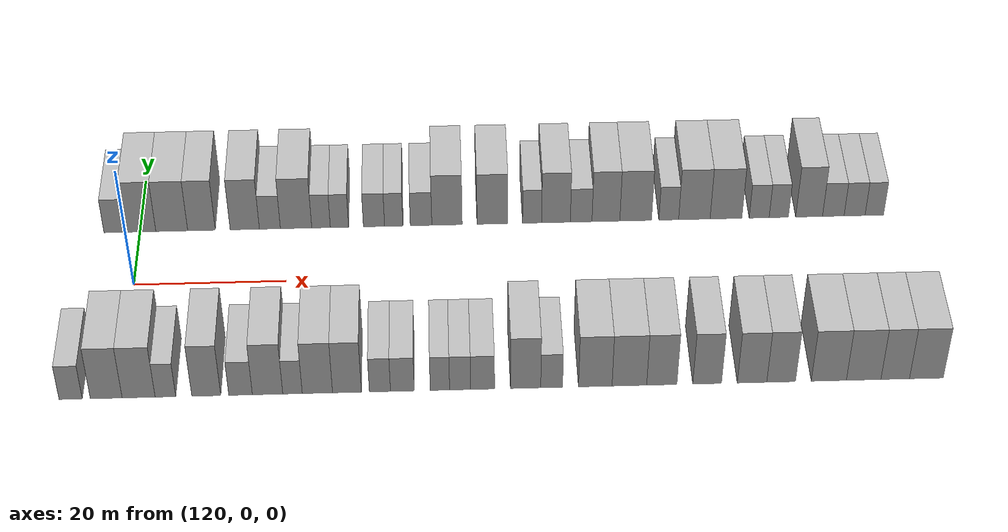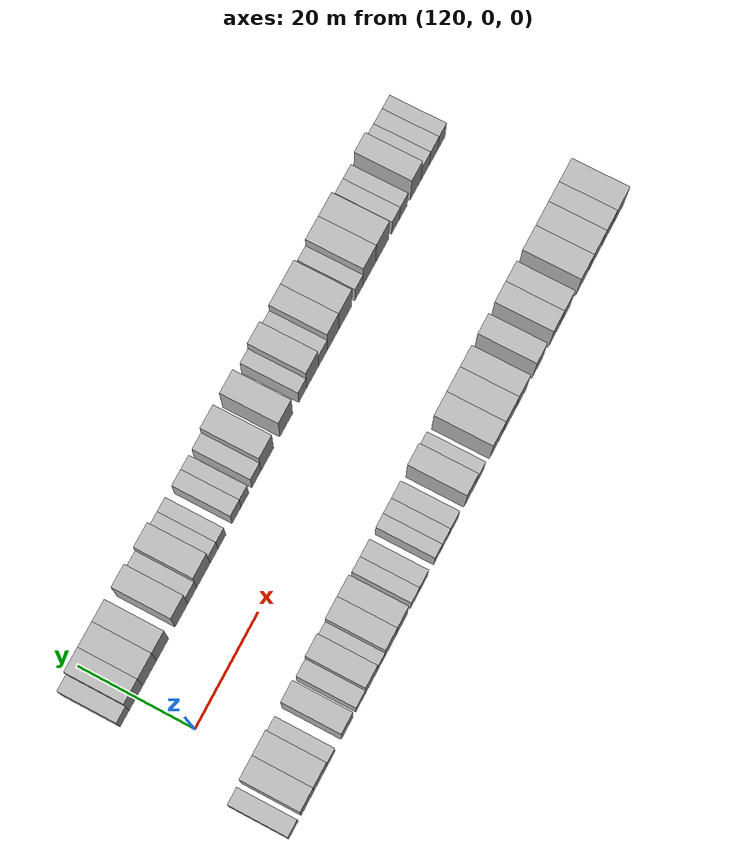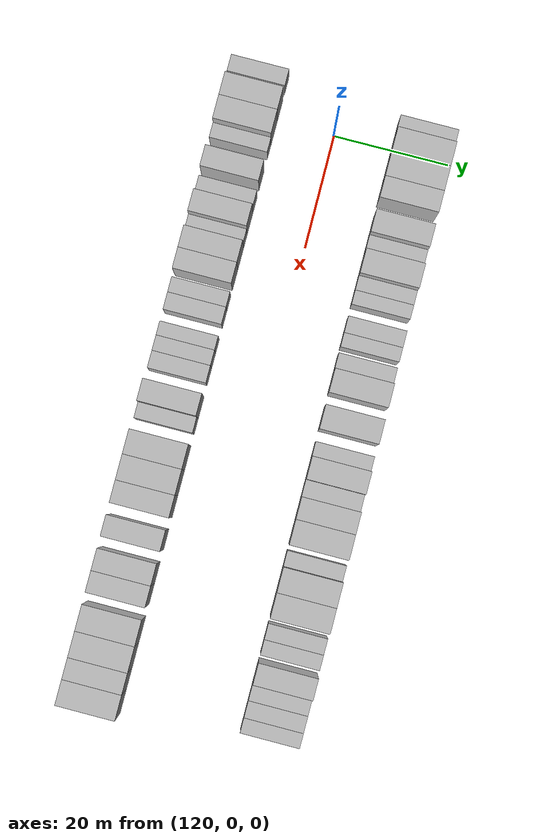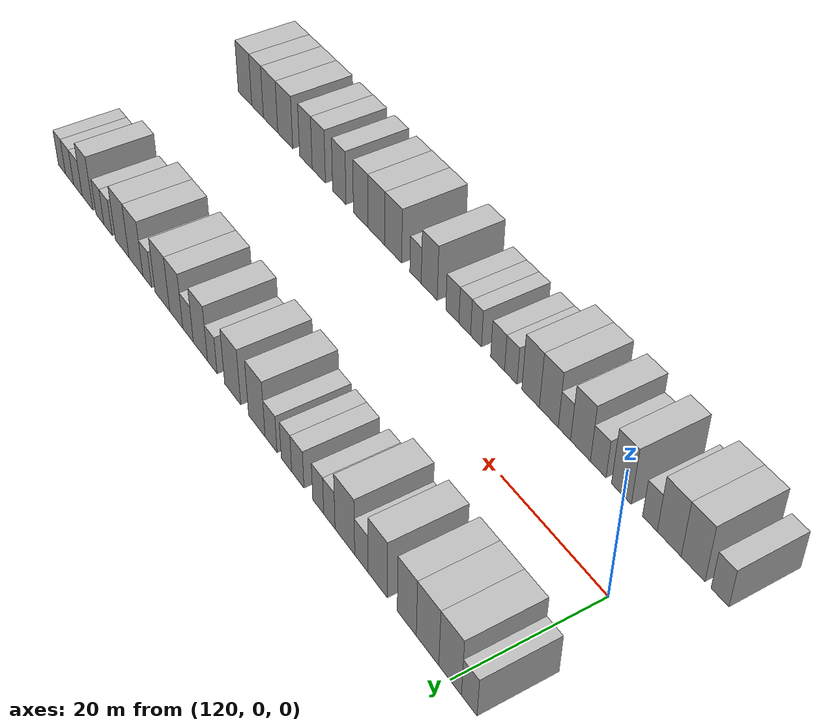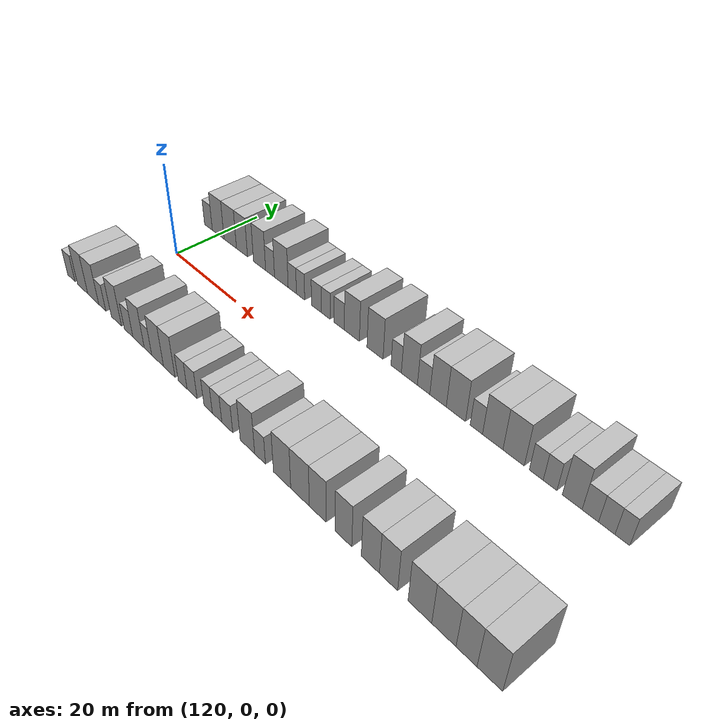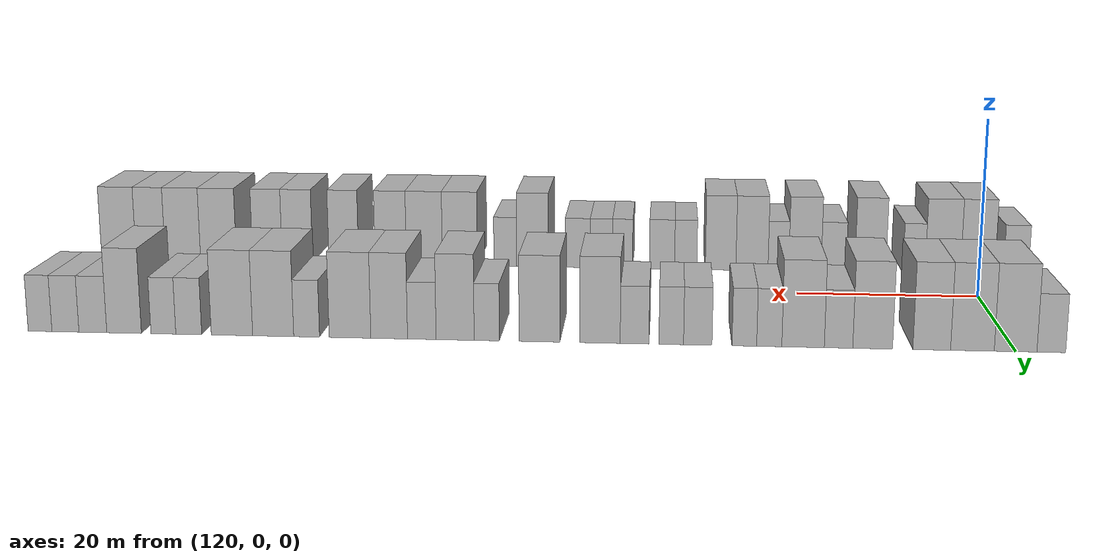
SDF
<sdf version="1.6">
 <world name="default">
  <model name="building_29">
   <static>1</static>
   <pose>116.5231 15.0000 0 0.000000 0.000000 1.570796</pose>
   <link name="link">
    <pose>0 0 3.00 0 0 0</pose>
    <collision name="collision"><geometry><box><size>10.0000 2.7981 6.0000</size></box></geometry></collision>
    <visual name="visual">
     <cast_shadows>0</cast_shadows>
     <geometry><box><size>10.0000 2.7981 6.0000</size></box></geometry>
     <material>
      <script>
       <uri>model://HANNAS_wall/materials/scripts</uri>
       <uri>model://HANNAS_wall/materials/textures</uri>
       <name>vrc/HANNAS_wall</name>
      </script>
     </material>
    </visual>
   </link>
  </model>
  <model name="building_30">
   <static>1</static>
   <pose>120.0027 15.0000 0 0.000000 0.000000 1.570796</pose>
   <link name="link">
    <pose>0 0 4.50 0 0 0</pose>
    <collision name="collision"><geometry><box><size>10.0000 4.1611 9.0000</size></box></geometry></collision>
    <visual name="visual">
     <cast_shadows>0</cast_shadows>
     <geometry><box><size>10.0000 4.1611 9.0000</size></box></geometry>
     <material>
      <script>
       <uri>model://HANNAS_wall/materials/scripts</uri>
       <uri>model://HANNAS_wall/materials/textures</uri>
       <name>vrc/HANNAS_wall</name>
      </script>
     </material>
    </visual>
   </link>
  </model>
  <model name="building_31">
   <static>1</static>
   <pose>124.2219 15.0000 0 0.000000 0.000000 1.570796</pose>
   <link name="link">
    <pose>0 0 4.50 0 0 0</pose>
    <collision name="collision"><geometry><box><size>10.0000 4.2773 9.0000</size></box></geometry></collision>
    <visual name="visual">
     <cast_shadows>0</cast_shadows>
     <geometry><box><size>10.0000 4.2773 9.0000</size></box></geometry>
     <material>
      <script>
       <uri>model://HANNAS_wall/materials/scripts</uri>
       <uri>model://HANNAS_wall/materials/textures</uri>
       <name>vrc/HANNAS_wall</name>
      </script>
     </material>
    </visual>
   </link>
  </model>
  <model name="building_32">
   <static>1</static>
   <pose>128.2122 15.0000 0 0.000000 0.000000 1.570796</pose>
   <link name="link">
    <pose>0 0 4.50 0 0 0</pose>
    <collision name="collision"><geometry><box><size>10.0000 3.7033 9.0000</size></box></geometry></collision>
    <visual name="visual">
     <cast_shadows>0</cast_shadows>
     <geometry><box><size>10.0000 3.7033 9.0000</size></box></geometry>
     <material>
      <script>
       <uri>model://HANNAS_wall/materials/scripts</uri>
       <uri>model://HANNAS_wall/materials/textures</uri>
       <name>vrc/HANNAS_wall</name>
      </script>
     </material>
    </visual>
   </link>
  </model>
  <model name="building_33">
   <static>1</static>
   <pose>134.0281 15.0000 0 0.000000 0.000000 1.570796</pose>
   <link name="link">
    <pose>0 0 4.50 0 0 0</pose>
    <collision name="collision"><geometry><box><size>10.0000 3.9285 9.0000</size></box></geometry></collision>
    <visual name="visual">
     <cast_shadows>0</cast_shadows>
     <geometry><box><size>10.0000 3.9285 9.0000</size></box></geometry>
     <material>
      <script>
       <uri>model://HANNAS_wall/materials/scripts</uri>
       <uri>model://HANNAS_wall/materials/textures</uri>
       <name>vrc/HANNAS_wall</name>
      </script>
     </material>
    </visual>
   </link>
  </model>
  <model name="building_34">
   <static>1</static>
   <pose>137.4024 15.0000 0 0.000000 0.000000 1.570796</pose>
   <link name="link">
    <pose>0 0 3.00 0 0 0</pose>
    <collision name="collision"><geometry><box><size>10.0000 2.8201 6.0000</size></box></geometry></collision>
    <visual name="visual">
     <cast_shadows>0</cast_shadows>
     <geometry><box><size>10.0000 2.8201 6.0000</size></box></geometry>
     <material>
      <script>
       <uri>model://HANNAS_wall/materials/scripts</uri>
       <uri>model://HANNAS_wall/materials/textures</uri>
       <name>vrc/HANNAS_wall</name>
      </script>
     </material>
    </visual>
   </link>
  </model>
  <model name="building_35">
   <static>1</static>
   <pose>140.9218 15.0000 0 0.000000 0.000000 1.570796</pose>
   <link name="link">
    <pose>0 0 4.50 0 0 0</pose>
    <collision name="collision"><geometry><box><size>10.0000 4.2188 9.0000</size></box></geometry></collision>
    <visual name="visual">
     <cast_shadows>0</cast_shadows>
     <geometry><box><size>10.0000 4.2188 9.0000</size></box></geometry>
     <material>
      <script>
       <uri>model://HANNAS_wall/materials/scripts</uri>
       <uri>model://HANNAS_wall/materials/textures</uri>
       <name>vrc/HANNAS_wall</name>
      </script>
     </material>
    </visual>
   </link>
  </model>
  <model name="building_36">
   <static>1</static>
   <pose>144.2823 15.0000 0 0.000000 0.000000 1.570796</pose>
   <link name="link">
    <pose>0 0 3.00 0 0 0</pose>
    <collision name="collision"><geometry><box><size>10.0000 2.5022 6.0000</size></box></geometry></collision>
    <visual name="visual">
     <cast_shadows>0</cast_shadows>
     <geometry><box><size>10.0000 2.5022 6.0000</size></box></geometry>
     <material>
      <script>
       <uri>model://HANNAS_wall/materials/scripts</uri>
       <uri>model://HANNAS_wall/materials/textures</uri>
       <name>vrc/HANNAS_wall</name>
      </script>
     </material>
    </visual>
   </link>
  </model>
  <model name="building_37">
   <static>1</static>
   <pose>146.7636 15.0000 0 0.000000 0.000000 1.570796</pose>
   <link name="link">
    <pose>0 0 3.00 0 0 0</pose>
    <collision name="collision"><geometry><box><size>10.0000 2.4604 6.0000</size></box></geometry></collision>
    <visual name="visual">
     <cast_shadows>0</cast_shadows>
     <geometry><box><size>10.0000 2.4604 6.0000</size></box></geometry>
     <material>
      <script>
       <uri>model://HANNAS_wall/materials/scripts</uri>
       <uri>model://HANNAS_wall/materials/textures</uri>
       <name>vrc/HANNAS_wall</name>
      </script>
     </material>
    </visual>
   </link>
  </model>
  <model name="building_38">
   <static>1</static>
   <pose>151.4189 15.0000 0 0.000000 0.000000 1.570796</pose>
   <link name="link">
    <pose>0 0 3.00 0 0 0</pose>
    <collision name="collision"><geometry><box><size>10.0000 2.8504 6.0000</size></box></geometry></collision>
    <visual name="visual">
     <cast_shadows>0</cast_shadows>
     <geometry><box><size>10.0000 2.8504 6.0000</size></box></geometry>
     <material>
      <script>
       <uri>model://HANNAS_wall/materials/scripts</uri>
       <uri>model://HANNAS_wall/materials/textures</uri>
       <name>vrc/HANNAS_wall</name>
      </script>
     </material>
    </visual>
   </link>
  </model>
  <model name="building_39">
   <static>1</static>
   <pose>154.0806 15.0000 0 0.000000 0.000000 1.570796</pose>
   <link name="link">
    <pose>0 0 3.00 0 0 0</pose>
    <collision name="collision"><geometry><box><size>10.0000 2.4729 6.0000</size></box></geometry></collision>
    <visual name="visual">
     <cast_shadows>0</cast_shadows>
     <geometry><box><size>10.0000 2.4729 6.0000</size></box></geometry>
     <material>
      <script>
       <uri>model://HANNAS_wall/materials/scripts</uri>
       <uri>model://HANNAS_wall/materials/textures</uri>
       <name>vrc/HANNAS_wall</name>
      </script>
     </material>
    </visual>
   </link>
  </model>
  <model name="building_40">
   <static>1</static>
   <pose>157.7672 15.0000 0 0.000000 0.000000 1.570796</pose>
   <link name="link">
    <pose>0 0 3.00 0 0 0</pose>
    <collision name="collision"><geometry><box><size>10.0000 2.9003 6.0000</size></box></geometry></collision>
    <visual name="visual">
     <cast_shadows>0</cast_shadows>
     <geometry><box><size>10.0000 2.9003 6.0000</size></box></geometry>
     <material>
      <script>
       <uri>model://HANNAS_wall/materials/scripts</uri>
       <uri>model://HANNAS_wall/materials/textures</uri>
       <name>vrc/HANNAS_wall</name>
      </script>
     </material>
    </visual>
   </link>
  </model>
  <model name="building_41">
   <static>1</static>
   <pose>161.2655 15.0000 0 0.000000 0.000000 1.570796</pose>
   <link name="link">
    <pose>0 0 4.50 0 0 0</pose>
    <collision name="collision"><geometry><box><size>10.0000 4.0963 9.0000</size></box></geometry></collision>
    <visual name="visual">
     <cast_shadows>0</cast_shadows>
     <geometry><box><size>10.0000 4.0963 9.0000</size></box></geometry>
     <material>
      <script>
       <uri>model://HANNAS_wall/materials/scripts</uri>
       <uri>model://HANNAS_wall/materials/textures</uri>
       <name>vrc/HANNAS_wall</name>
      </script>
     </material>
    </visual>
   </link>
  </model>
  <model name="building_42">
   <static>1</static>
   <pose>167.3902 15.0000 0 0.000000 0.000000 1.570796</pose>
   <link name="link">
    <pose>0 0 4.50 0 0 0</pose>
    <collision name="collision"><geometry><box><size>10.0000 4.1531 9.0000</size></box></geometry></collision>
    <visual name="visual">
     <cast_shadows>0</cast_shadows>
     <geometry><box><size>10.0000 4.1531 9.0000</size></box></geometry>
     <material>
      <script>
       <uri>model://HANNAS_wall/materials/scripts</uri>
       <uri>model://HANNAS_wall/materials/textures</uri>
       <name>vrc/HANNAS_wall</name>
      </script>
     </material>
    </visual>
   </link>
  </model>
  <model name="building_43">
   <static>1</static>
   <pose>172.7508 15.0000 0 0.000000 0.000000 1.570796</pose>
   <link name="link">
    <pose>0 0 3.00 0 0 0</pose>
    <collision name="collision"><geometry><box><size>10.0000 2.5681 6.0000</size></box></geometry></collision>
    <visual name="visual">
     <cast_shadows>0</cast_shadows>
     <geometry><box><size>10.0000 2.5681 6.0000</size></box></geometry>
     <material>
      <script>
       <uri>model://HANNAS_wall/materials/scripts</uri>
       <uri>model://HANNAS_wall/materials/textures</uri>
       <name>vrc/HANNAS_wall</name>
      </script>
     </material>
    </visual>
   </link>
  </model>
  <model name="building_44">
   <static>1</static>
   <pose>175.9808 15.0000 0 0.000000 0.000000 1.570796</pose>
   <link name="link">
    <pose>0 0 4.50 0 0 0</pose>
    <collision name="collision"><geometry><box><size>10.0000 3.8918 9.0000</size></box></geometry></collision>
    <visual name="visual">
     <cast_shadows>0</cast_shadows>
     <geometry><box><size>10.0000 3.8918 9.0000</size></box></geometry>
     <material>
      <script>
       <uri>model://HANNAS_wall/materials/scripts</uri>
       <uri>model://HANNAS_wall/materials/textures</uri>
       <name>vrc/HANNAS_wall</name>
      </script>
     </material>
    </visual>
   </link>
  </model>
  <model name="building_45">
   <static>1</static>
   <pose>179.3925 15.0000 0 0.000000 0.000000 1.570796</pose>
   <link name="link">
    <pose>0 0 3.00 0 0 0</pose>
    <collision name="collision"><geometry><box><size>10.0000 2.9315 6.0000</size></box></geometry></collision>
    <visual name="visual">
     <cast_shadows>0</cast_shadows>
     <geometry><box><size>10.0000 2.9315 6.0000</size></box></geometry>
     <material>
      <script>
       <uri>model://HANNAS_wall/materials/scripts</uri>
       <uri>model://HANNAS_wall/materials/textures</uri>
       <name>vrc/HANNAS_wall</name>
      </script>
     </material>
    </visual>
   </link>
  </model>
  <model name="building_46">
   <static>1</static>
   <pose>182.7444 15.0000 0 0.000000 0.000000 1.570796</pose>
   <link name="link">
    <pose>0 0 4.50 0 0 0</pose>
    <collision name="collision"><geometry><box><size>10.0000 3.7723 9.0000</size></box></geometry></collision>
    <visual name="visual">
     <cast_shadows>0</cast_shadows>
     <geometry><box><size>10.0000 3.7723 9.0000</size></box></geometry>
     <material>
      <script>
       <uri>model://HANNAS_wall/materials/scripts</uri>
       <uri>model://HANNAS_wall/materials/textures</uri>
       <name>vrc/HANNAS_wall</name>
      </script>
     </material>
    </visual>
   </link>
  </model>
  <model name="building_47">
   <static>1</static>
   <pose>186.7781 15.0000 0 0.000000 0.000000 1.570796</pose>
   <link name="link">
    <pose>0 0 4.50 0 0 0</pose>
    <collision name="collision"><geometry><box><size>10.0000 4.2951 9.0000</size></box></geometry></collision>
    <visual name="visual">
     <cast_shadows>0</cast_shadows>
     <geometry><box><size>10.0000 4.2951 9.0000</size></box></geometry>
     <material>
      <script>
       <uri>model://HANNAS_wall/materials/scripts</uri>
       <uri>model://HANNAS_wall/materials/textures</uri>
       <name>vrc/HANNAS_wall</name>
      </script>
     </material>
    </visual>
   </link>
  </model>
  <model name="building_48">
   <static>1</static>
   <pose>191.2633 15.0000 0 0.000000 0.000000 1.570796</pose>
   <link name="link">
    <pose>0 0 3.00 0 0 0</pose>
    <collision name="collision"><geometry><box><size>10.0000 2.6752 6.0000</size></box></geometry></collision>
    <visual name="visual">
     <cast_shadows>0</cast_shadows>
     <geometry><box><size>10.0000 2.6752 6.0000</size></box></geometry>
     <material>
      <script>
       <uri>model://HANNAS_wall/materials/scripts</uri>
       <uri>model://HANNAS_wall/materials/textures</uri>
       <name>vrc/HANNAS_wall</name>
      </script>
     </material>
    </visual>
   </link>
  </model>
  <model name="building_49">
   <static>1</static>
   <pose>194.7339 15.0000 0 0.000000 0.000000 1.570796</pose>
   <link name="link">
    <pose>0 0 4.50 0 0 0</pose>
    <collision name="collision"><geometry><box><size>10.0000 4.2661 9.0000</size></box></geometry></collision>
    <visual name="visual">
     <cast_shadows>0</cast_shadows>
     <geometry><box><size>10.0000 4.2661 9.0000</size></box></geometry>
     <material>
      <script>
       <uri>model://HANNAS_wall/materials/scripts</uri>
       <uri>model://HANNAS_wall/materials/textures</uri>
       <name>vrc/HANNAS_wall</name>
      </script>
     </material>
    </visual>
   </link>
  </model>
  <model name="building_50">
   <static>1</static>
   <pose>199.0243 15.0000 0 0.000000 0.000000 1.570796</pose>
   <link name="link">
    <pose>0 0 4.50 0 0 0</pose>
    <collision name="collision"><geometry><box><size>10.0000 4.3147 9.0000</size></box></geometry></collision>
    <visual name="visual">
     <cast_shadows>0</cast_shadows>
     <geometry><box><size>10.0000 4.3147 9.0000</size></box></geometry>
     <material>
      <script>
       <uri>model://HANNAS_wall/materials/scripts</uri>
       <uri>model://HANNAS_wall/materials/textures</uri>
       <name>vrc/HANNAS_wall</name>
      </script>
     </material>
    </visual>
   </link>
  </model>
  <model name="building_51">
   <static>1</static>
   <pose>203.5385 15.0000 0 0.000000 0.000000 1.570796</pose>
   <link name="link">
    <pose>0 0 3.00 0 0 0</pose>
    <collision name="collision"><geometry><box><size>10.0000 2.7138 6.0000</size></box></geometry></collision>
    <visual name="visual">
     <cast_shadows>0</cast_shadows>
     <geometry><box><size>10.0000 2.7138 6.0000</size></box></geometry>
     <material>
      <script>
       <uri>model://HANNAS_wall/materials/scripts</uri>
       <uri>model://HANNAS_wall/materials/textures</uri>
       <name>vrc/HANNAS_wall</name>
      </script>
     </material>
    </visual>
   </link>
  </model>
  <model name="building_52">
   <static>1</static>
   <pose>206.1987 15.0000 0 0.000000 0.000000 1.570796</pose>
   <link name="link">
    <pose>0 0 3.00 0 0 0</pose>
    <collision name="collision"><geometry><box><size>10.0000 2.6066 6.0000</size></box></geometry></collision>
    <visual name="visual">
     <cast_shadows>0</cast_shadows>
     <geometry><box><size>10.0000 2.6066 6.0000</size></box></geometry>
     <material>
      <script>
       <uri>model://HANNAS_wall/materials/scripts</uri>
       <uri>model://HANNAS_wall/materials/textures</uri>
       <name>vrc/HANNAS_wall</name>
      </script>
     </material>
    </visual>
   </link>
  </model>
  <model name="building_53">
   <static>1</static>
   <pose>210.3247 15.0000 0 0.000000 0.000000 1.570796</pose>
   <link name="link">
    <pose>0 0 4.50 0 0 0</pose>
    <collision name="collision"><geometry><box><size>10.0000 3.6454 9.0000</size></box></geometry></collision>
    <visual name="visual">
     <cast_shadows>0</cast_shadows>
     <geometry><box><size>10.0000 3.6454 9.0000</size></box></geometry>
     <material>
      <script>
       <uri>model://HANNAS_wall/materials/scripts</uri>
       <uri>model://HANNAS_wall/materials/textures</uri>
       <name>vrc/HANNAS_wall</name>
      </script>
     </material>
    </visual>
   </link>
  </model>
  <model name="building_54">
   <static>1</static>
   <pose>213.6157 15.0000 0 0.000000 0.000000 1.570796</pose>
   <link name="link">
    <pose>0 0 3.00 0 0 0</pose>
    <collision name="collision"><geometry><box><size>10.0000 2.9364 6.0000</size></box></geometry></collision>
    <visual name="visual">
     <cast_shadows>0</cast_shadows>
     <geometry><box><size>10.0000 2.9364 6.0000</size></box></geometry>
     <material>
      <script>
       <uri>model://HANNAS_wall/materials/scripts</uri>
       <uri>model://HANNAS_wall/materials/textures</uri>
       <name>vrc/HANNAS_wall</name>
      </script>
     </material>
    </visual>
   </link>
  </model>
  <model name="building_55">
   <static>1</static>
   <pose>216.5117 15.0000 0 0.000000 0.000000 1.570796</pose>
   <link name="link">
    <pose>0 0 3.00 0 0 0</pose>
    <collision name="collision"><geometry><box><size>10.0000 2.8557 6.0000</size></box></geometry></collision>
    <visual name="visual">
     <cast_shadows>0</cast_shadows>
     <geometry><box><size>10.0000 2.8557 6.0000</size></box></geometry>
     <material>
      <script>
       <uri>model://HANNAS_wall/materials/scripts</uri>
       <uri>model://HANNAS_wall/materials/textures</uri>
       <name>vrc/HANNAS_wall</name>
      </script>
     </material>
    </visual>
   </link>
  </model>
  <model name="building_56">
   <static>1</static>
   <pose>219.1995 15.0000 0 0.000000 0.000000 1.570796</pose>
   <link name="link">
    <pose>0 0 3.00 0 0 0</pose>
    <collision name="collision"><geometry><box><size>10.0000 2.5199 6.0000</size></box></geometry></collision>
    <visual name="visual">
     <cast_shadows>0</cast_shadows>
     <geometry><box><size>10.0000 2.5199 6.0000</size></box></geometry>
     <material>
      <script>
       <uri>model://HANNAS_wall/materials/scripts</uri>
       <uri>model://HANNAS_wall/materials/textures</uri>
       <name>vrc/HANNAS_wall</name>
      </script>
     </material>
    </visual>
   </link>
  </model>
  <model name="building_83">
   <static>1</static>
   <pose>113.8190 -15.0000 0 0.000000 0.000000 1.570796</pose>
   <link name="link">
    <pose>0 0 3.00 0 0 0</pose>
    <collision name="collision"><geometry><box><size>10.0000 2.8850 6.0000</size></box></geometry></collision>
    <visual name="visual">
     <cast_shadows>0</cast_shadows>
     <geometry><box><size>10.0000 2.8850 6.0000</size></box></geometry>
     <material>
      <script>
       <uri>model://HANNAS_wall/materials/scripts</uri>
       <uri>model://HANNAS_wall/materials/textures</uri>
       <name>vrc/HANNAS_wall</name>
      </script>
     </material>
    </visual>
   </link>
  </model>
  <model name="building_84">
   <static>1</static>
   <pose>118.2429 -15.0000 0 0.000000 0.000000 1.570796</pose>
   <link name="link">
    <pose>0 0 4.50 0 0 0</pose>
    <collision name="collision"><geometry><box><size>10.0000 3.9629 9.0000</size></box></geometry></collision>
    <visual name="visual">
     <cast_shadows>0</cast_shadows>
     <geometry><box><size>10.0000 3.9629 9.0000</size></box></geometry>
     <material>
      <script>
       <uri>model://HANNAS_wall/materials/scripts</uri>
       <uri>model://HANNAS_wall/materials/textures</uri>
       <name>vrc/HANNAS_wall</name>
      </script>
     </material>
    </visual>
   </link>
  </model>
  <model name="building_85">
   <static>1</static>
   <pose>122.2781 -15.0000 0 0.000000 0.000000 1.570796</pose>
   <link name="link">
    <pose>0 0 4.50 0 0 0</pose>
    <collision name="collision"><geometry><box><size>10.0000 4.1075 9.0000</size></box></geometry></collision>
    <visual name="visual">
     <cast_shadows>0</cast_shadows>
     <geometry><box><size>10.0000 4.1075 9.0000</size></box></geometry>
     <material>
      <script>
       <uri>model://HANNAS_wall/materials/scripts</uri>
       <uri>model://HANNAS_wall/materials/textures</uri>
       <name>vrc/HANNAS_wall</name>
      </script>
     </material>
    </visual>
   </link>
  </model>
  <model name="building_86">
   <static>1</static>
   <pose>125.6180 -15.0000 0 0.000000 0.000000 1.570796</pose>
   <link name="link">
    <pose>0 0 3.00 0 0 0</pose>
    <collision name="collision"><geometry><box><size>10.0000 2.5723 6.0000</size></box></geometry></collision>
    <visual name="visual">
     <cast_shadows>0</cast_shadows>
     <geometry><box><size>10.0000 2.5723 6.0000</size></box></geometry>
     <material>
      <script>
       <uri>model://HANNAS_wall/materials/scripts</uri>
       <uri>model://HANNAS_wall/materials/textures</uri>
       <name>vrc/HANNAS_wall</name>
      </script>
     </material>
    </visual>
   </link>
  </model>
  <model name="building_87">
   <static>1</static>
   <pose>130.7125 -15.0000 0 0.000000 0.000000 1.570796</pose>
   <link name="link">
    <pose>0 0 4.50 0 0 0</pose>
    <collision name="collision"><geometry><box><size>10.0000 3.6168 9.0000</size></box></geometry></collision>
    <visual name="visual">
     <cast_shadows>0</cast_shadows>
     <geometry><box><size>10.0000 3.6168 9.0000</size></box></geometry>
     <material>
      <script>
       <uri>model://HANNAS_wall/materials/scripts</uri>
       <uri>model://HANNAS_wall/materials/textures</uri>
       <name>vrc/HANNAS_wall</name>
      </script>
     </material>
    </visual>
   </link>
  </model>
  <model name="building_88">
   <static>1</static>
   <pose>134.9914 -15.0000 0 0.000000 0.000000 1.570796</pose>
   <link name="link">
    <pose>0 0 3.00 0 0 0</pose>
    <collision name="collision"><geometry><box><size>10.0000 2.9410 6.0000</size></box></geometry></collision>
    <visual name="visual">
     <cast_shadows>0</cast_shadows>
     <geometry><box><size>10.0000 2.9410 6.0000</size></box></geometry>
     <material>
      <script>
       <uri>model://HANNAS_wall/materials/scripts</uri>
       <uri>model://HANNAS_wall/materials/textures</uri>
       <name>vrc/HANNAS_wall</name>
      </script>
     </material>
    </visual>
   </link>
  </model>
  <model name="building_89">
   <static>1</static>
   <pose>138.3607 -15.0000 0 0.000000 0.000000 1.570796</pose>
   <link name="link">
    <pose>0 0 4.50 0 0 0</pose>
    <collision name="collision"><geometry><box><size>10.0000 3.7976 9.0000</size></box></geometry></collision>
    <visual name="visual">
     <cast_shadows>0</cast_shadows>
     <geometry><box><size>10.0000 3.7976 9.0000</size></box></geometry>
     <material>
      <script>
       <uri>model://HANNAS_wall/materials/scripts</uri>
       <uri>model://HANNAS_wall/materials/textures</uri>
       <name>vrc/HANNAS_wall</name>
      </script>
     </material>
    </visual>
   </link>
  </model>
  <model name="building_90">
   <static>1</static>
   <pose>141.4771 -15.0000 0 0.000000 0.000000 1.570796</pose>
   <link name="link">
    <pose>0 0 3.00 0 0 0</pose>
    <collision name="collision"><geometry><box><size>10.0000 2.4353 6.0000</size></box></geometry></collision>
    <visual name="visual">
     <cast_shadows>0</cast_shadows>
     <geometry><box><size>10.0000 2.4353 6.0000</size></box></geometry>
     <material>
      <script>
       <uri>model://HANNAS_wall/materials/scripts</uri>
       <uri>model://HANNAS_wall/materials/textures</uri>
       <name>vrc/HANNAS_wall</name>
      </script>
     </material>
    </visual>
   </link>
  </model>
  <model name="building_91">
   <static>1</static>
   <pose>144.5871 -15.0000 0 0.000000 0.000000 1.570796</pose>
   <link name="link">
    <pose>0 0 4.50 0 0 0</pose>
    <collision name="collision"><geometry><box><size>10.0000 3.7846 9.0000</size></box></geometry></collision>
    <visual name="visual">
     <cast_shadows>0</cast_shadows>
     <geometry><box><size>10.0000 3.7846 9.0000</size></box></geometry>
     <material>
      <script>
       <uri>model://HANNAS_wall/materials/scripts</uri>
       <uri>model://HANNAS_wall/materials/textures</uri>
       <name>vrc/HANNAS_wall</name>
      </script>
     </material>
    </visual>
   </link>
  </model>
  <model name="building_92">
   <static>1</static>
   <pose>148.2839 -15.0000 0 0.000000 0.000000 1.570796</pose>
   <link name="link">
    <pose>0 0 4.50 0 0 0</pose>
    <collision name="collision"><geometry><box><size>10.0000 3.6091 9.0000</size></box></geometry></collision>
    <visual name="visual">
     <cast_shadows>0</cast_shadows>
     <geometry><box><size>10.0000 3.6091 9.0000</size></box></geometry>
     <material>
      <script>
       <uri>model://HANNAS_wall/materials/scripts</uri>
       <uri>model://HANNAS_wall/materials/textures</uri>
       <name>vrc/HANNAS_wall</name>
      </script>
     </material>
    </visual>
   </link>
  </model>
  <model name="building_93">
   <static>1</static>
   <pose>152.4093 -15.0000 0 0.000000 0.000000 1.570796</pose>
   <link name="link">
    <pose>0 0 3.00 0 0 0</pose>
    <collision name="collision"><geometry><box><size>10.0000 2.6416 6.0000</size></box></geometry></collision>
    <visual name="visual">
     <cast_shadows>0</cast_shadows>
     <geometry><box><size>10.0000 2.6416 6.0000</size></box></geometry>
     <material>
      <script>
       <uri>model://HANNAS_wall/materials/scripts</uri>
       <uri>model://HANNAS_wall/materials/textures</uri>
       <name>vrc/HANNAS_wall</name>
      </script>
     </material>
    </visual>
   </link>
  </model>
  <model name="building_94">
   <static>1</static>
   <pose>155.2237 -15.0000 0 0.000000 0.000000 1.570796</pose>
   <link name="link">
    <pose>0 0 3.00 0 0 0</pose>
    <collision name="collision"><geometry><box><size>10.0000 2.9871 6.0000</size></box></geometry></collision>
    <visual name="visual">
     <cast_shadows>0</cast_shadows>
     <geometry><box><size>10.0000 2.9871 6.0000</size></box></geometry>
     <material>
      <script>
       <uri>model://HANNAS_wall/materials/scripts</uri>
       <uri>model://HANNAS_wall/materials/textures</uri>
       <name>vrc/HANNAS_wall</name>
      </script>
     </material>
    </visual>
   </link>
  </model>
  <model name="building_95">
   <static>1</static>
   <pose>159.9237 -15.0000 0 0.000000 0.000000 1.570796</pose>
   <link name="link">
    <pose>0 0 3.00 0 0 0</pose>
    <collision name="collision"><geometry><box><size>10.0000 2.4131 6.0000</size></box></geometry></collision>
    <visual name="visual">
     <cast_shadows>0</cast_shadows>
     <geometry><box><size>10.0000 2.4131 6.0000</size></box></geometry>
     <material>
      <script>
       <uri>model://HANNAS_wall/materials/scripts</uri>
       <uri>model://HANNAS_wall/materials/textures</uri>
       <name>vrc/HANNAS_wall</name>
      </script>
     </material>
    </visual>
   </link>
  </model>
  <model name="building_96">
   <static>1</static>
   <pose>162.4526 -15.0000 0 0.000000 0.000000 1.570796</pose>
   <link name="link">
    <pose>0 0 3.00 0 0 0</pose>
    <collision name="collision"><geometry><box><size>10.0000 2.6447 6.0000</size></box></geometry></collision>
    <visual name="visual">
     <cast_shadows>0</cast_shadows>
     <geometry><box><size>10.0000 2.6447 6.0000</size></box></geometry>
     <material>
      <script>
       <uri>model://HANNAS_wall/materials/scripts</uri>
       <uri>model://HANNAS_wall/materials/textures</uri>
       <name>vrc/HANNAS_wall</name>
      </script>
     </material>
    </visual>
   </link>
  </model>
  <model name="building_97">
   <static>1</static>
   <pose>165.2730 -15.0000 0 0.000000 0.000000 1.570796</pose>
   <link name="link">
    <pose>0 0 3.00 0 0 0</pose>
    <collision name="collision"><geometry><box><size>10.0000 2.9961 6.0000</size></box></geometry></collision>
    <visual name="visual">
     <cast_shadows>0</cast_shadows>
     <geometry><box><size>10.0000 2.9961 6.0000</size></box></geometry>
     <material>
      <script>
       <uri>model://HANNAS_wall/materials/scripts</uri>
       <uri>model://HANNAS_wall/materials/textures</uri>
       <name>vrc/HANNAS_wall</name>
      </script>
     </material>
    </visual>
   </link>
  </model>
  <model name="building_98">
   <static>1</static>
   <pose>170.6697 -15.0000 0 0.000000 0.000000 1.570796</pose>
   <link name="link">
    <pose>0 0 4.50 0 0 0</pose>
    <collision name="collision"><geometry><box><size>10.0000 3.7973 9.0000</size></box></geometry></collision>
    <visual name="visual">
     <cast_shadows>0</cast_shadows>
     <geometry><box><size>10.0000 3.7973 9.0000</size></box></geometry>
     <material>
      <script>
       <uri>model://HANNAS_wall/materials/scripts</uri>
       <uri>model://HANNAS_wall/materials/textures</uri>
       <name>vrc/HANNAS_wall</name>
      </script>
     </material>
    </visual>
   </link>
  </model>
  <model name="building_99">
   <static>1</static>
   <pose>173.9402 -15.0000 0 0.000000 0.000000 1.570796</pose>
   <link name="link">
    <pose>0 0 3.00 0 0 0</pose>
    <collision name="collision"><geometry><box><size>10.0000 2.7437 6.0000</size></box></geometry></collision>
    <visual name="visual">
     <cast_shadows>0</cast_shadows>
     <geometry><box><size>10.0000 2.7437 6.0000</size></box></geometry>
     <material>
      <script>
       <uri>model://HANNAS_wall/materials/scripts</uri>
       <uri>model://HANNAS_wall/materials/textures</uri>
       <name>vrc/HANNAS_wall</name>
      </script>
     </material>
    </visual>
   </link>
  </model>
  <model name="building_100">
   <static>1</static>
   <pose>179.4215 -15.0000 0 0.000000 0.000000 1.570796</pose>
   <link name="link">
    <pose>0 0 4.50 0 0 0</pose>
    <collision name="collision"><geometry><box><size>10.0000 4.2189 9.0000</size></box></geometry></collision>
    <visual name="visual">
     <cast_shadows>0</cast_shadows>
     <geometry><box><size>10.0000 4.2189 9.0000</size></box></geometry>
     <material>
      <script>
       <uri>model://HANNAS_wall/materials/scripts</uri>
       <uri>model://HANNAS_wall/materials/textures</uri>
       <name>vrc/HANNAS_wall</name>
      </script>
     </material>
    </visual>
   </link>
  </model>
  <model name="building_101">
   <static>1</static>
   <pose>183.7113 -15.0000 0 0.000000 0.000000 1.570796</pose>
   <link name="link">
    <pose>0 0 4.50 0 0 0</pose>
    <collision name="collision"><geometry><box><size>10.0000 4.3606 9.0000</size></box></geometry></collision>
    <visual name="visual">
     <cast_shadows>0</cast_shadows>
     <geometry><box><size>10.0000 4.3606 9.0000</size></box></geometry>
     <material>
      <script>
       <uri>model://HANNAS_wall/materials/scripts</uri>
       <uri>model://HANNAS_wall/materials/textures</uri>
       <name>vrc/HANNAS_wall</name>
      </script>
     </material>
    </visual>
   </link>
  </model>
  <model name="building_102">
   <static>1</static>
   <pose>187.7922 -15.0000 0 0.000000 0.000000 1.570796</pose>
   <link name="link">
    <pose>0 0 4.50 0 0 0</pose>
    <collision name="collision"><geometry><box><size>10.0000 3.8013 9.0000</size></box></geometry></collision>
    <visual name="visual">
     <cast_shadows>0</cast_shadows>
     <geometry><box><size>10.0000 3.8013 9.0000</size></box></geometry>
     <material>
      <script>
       <uri>model://HANNAS_wall/materials/scripts</uri>
       <uri>model://HANNAS_wall/materials/textures</uri>
       <name>vrc/HANNAS_wall</name>
      </script>
     </material>
    </visual>
   </link>
  </model>
  <model name="building_103">
   <static>1</static>
   <pose>193.4999 -15.0000 0 0.000000 0.000000 1.570796</pose>
   <link name="link">
    <pose>0 0 4.50 0 0 0</pose>
    <collision name="collision"><geometry><box><size>10.0000 3.6141 9.0000</size></box></geometry></collision>
    <visual name="visual">
     <cast_shadows>0</cast_shadows>
     <geometry><box><size>10.0000 3.6141 9.0000</size></box></geometry>
     <material>
      <script>
       <uri>model://HANNAS_wall/materials/scripts</uri>
       <uri>model://HANNAS_wall/materials/textures</uri>
       <name>vrc/HANNAS_wall</name>
      </script>
     </material>
    </visual>
   </link>
  </model>
  <model name="building_104">
   <static>1</static>
   <pose>199.1663 -15.0000 0 0.000000 0.000000 1.570796</pose>
   <link name="link">
    <pose>0 0 4.50 0 0 0</pose>
    <collision name="collision"><geometry><box><size>10.0000 3.7186 9.0000</size></box></geometry></collision>
    <visual name="visual">
     <cast_shadows>0</cast_shadows>
     <geometry><box><size>10.0000 3.7186 9.0000</size></box></geometry>
     <material>
      <script>
       <uri>model://HANNAS_wall/materials/scripts</uri>
       <uri>model://HANNAS_wall/materials/textures</uri>
       <name>vrc/HANNAS_wall</name>
      </script>
     </material>
    </visual>
   </link>
  </model>
  <model name="building_105">
   <static>1</static>
   <pose>202.8369 -15.0000 0 0.000000 0.000000 1.570796</pose>
   <link name="link">
    <pose>0 0 4.50 0 0 0</pose>
    <collision name="collision"><geometry><box><size>10.0000 3.6226 9.0000</size></box></geometry></collision>
    <visual name="visual">
     <cast_shadows>0</cast_shadows>
     <geometry><box><size>10.0000 3.6226 9.0000</size></box></geometry>
     <material>
      <script>
       <uri>model://HANNAS_wall/materials/scripts</uri>
       <uri>model://HANNAS_wall/materials/textures</uri>
       <name>vrc/HANNAS_wall</name>
      </script>
     </material>
    </visual>
   </link>
  </model>
  <model name="building_106">
   <static>1</static>
   <pose>208.8664 -15.0000 0 0.000000 0.000000 1.570796</pose>
   <link name="link">
    <pose>0 0 4.50 0 0 0</pose>
    <collision name="collision"><geometry><box><size>10.0000 4.4363 9.0000</size></box></geometry></collision>
    <visual name="visual">
     <cast_shadows>0</cast_shadows>
     <geometry><box><size>10.0000 4.4363 9.0000</size></box></geometry>
     <material>
      <script>
       <uri>model://HANNAS_wall/materials/scripts</uri>
       <uri>model://HANNAS_wall/materials/textures</uri>
       <name>vrc/HANNAS_wall</name>
      </script>
     </material>
    </visual>
   </link>
  </model>
  <model name="building_107">
   <static>1</static>
   <pose>213.2674 -15.0000 0 0.000000 0.000000 1.570796</pose>
   <link name="link">
    <pose>0 0 4.50 0 0 0</pose>
    <collision name="collision"><geometry><box><size>10.0000 4.3657 9.0000</size></box></geometry></collision>
    <visual name="visual">
     <cast_shadows>0</cast_shadows>
     <geometry><box><size>10.0000 4.3657 9.0000</size></box></geometry>
     <material>
      <script>
       <uri>model://HANNAS_wall/materials/scripts</uri>
       <uri>model://HANNAS_wall/materials/textures</uri>
       <name>vrc/HANNAS_wall</name>
      </script>
     </material>
    </visual>
   </link>
  </model>
  <model name="building_108">
   <static>1</static>
   <pose>217.2571 -15.0000 0 0.000000 0.000000 1.570796</pose>
   <link name="link">
    <pose>0 0 4.50 0 0 0</pose>
    <collision name="collision"><geometry><box><size>10.0000 3.6137 9.0000</size></box></geometry></collision>
    <visual name="visual">
     <cast_shadows>0</cast_shadows>
     <geometry><box><size>10.0000 3.6137 9.0000</size></box></geometry>
     <material>
      <script>
       <uri>model://HANNAS_wall/materials/scripts</uri>
       <uri>model://HANNAS_wall/materials/textures</uri>
       <name>vrc/HANNAS_wall</name>
      </script>
     </material>
    </visual>
   </link>
  </model>
  <model name="building_109">
   <static>1</static>
   <pose>221.2027 -15.0000 0 0.000000 0.000000 1.570796</pose>
   <link name="link">
    <pose>0 0 4.50 0 0 0</pose>
    <collision name="collision"><geometry><box><size>10.0000 4.2775 9.0000</size></box></geometry></collision>
    <visual name="visual">
     <cast_shadows>0</cast_shadows>
     <geometry><box><size>10.0000 4.2775 9.0000</size></box></geometry>
     <material>
      <script>
       <uri>model://HANNAS_wall/materials/scripts</uri>
       <uri>model://HANNAS_wall/materials/textures</uri>
       <name>vrc/HANNAS_wall</name>
      </script>
     </material>
    </visual>
   </link>
  </model>
 </world>
</sdf>
